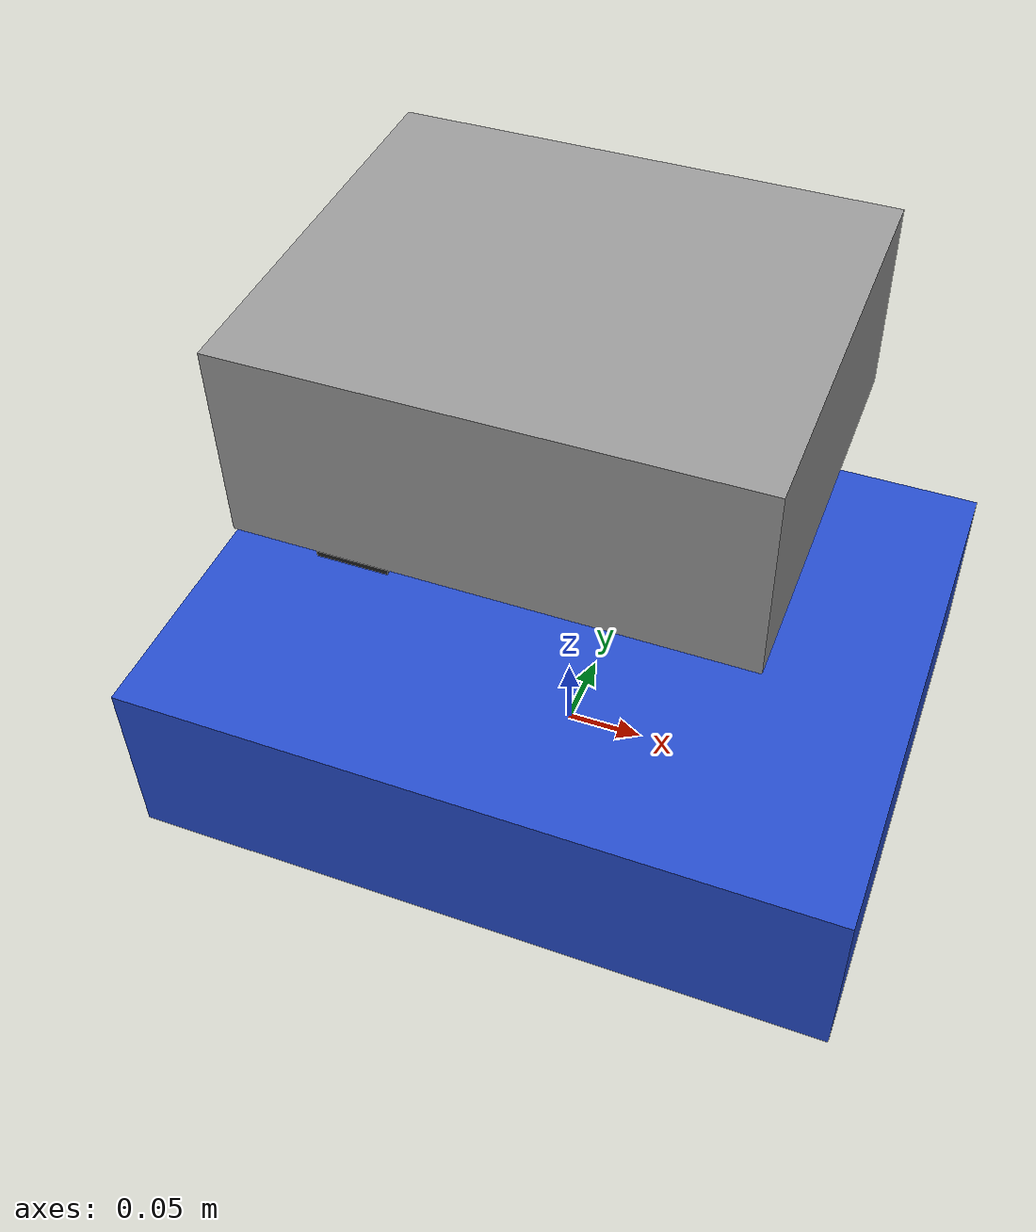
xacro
<?xml version="1.0"?>

<robot xmlns:xacro="http://www.ros.org/wiki/xacro">

    <!-- Base Chassis                  -->

    <link name="base_link">

        <visual>
            <origin xyz="0 0 0.06" rpy="0 0 0"/>
            <geometry>
                <box size="0.45 0.35 0.12"/>
            </geometry>
            <material name="blue"/>
        </visual>

        <collision>
            <origin xyz="0 0 0.07" rpy="0 0 0"/>
            <geometry>
                <box size="0.45 0.25 0.10"/>
            </geometry>
        </collision>

        <inertial>
            <origin xyz="0 0 0.06"/>
            <mass value="15"/>
            <inertia
                ixx="0.25"
                ixy="0"
                ixz="0"
                iyy="1.20"
                iyz="0"
                izz="0.50"/>
        </inertial>

    </link>

    <!-- Parcel Box                    -->

    <link name="parcel_box">

        <visual>

            <origin xyz="0 0 0.18"/>

            <geometry>
                <box size="0.30 0.25 0.12"/>
            </geometry>

            <material name="grey"/>

        </visual>

        <collision>

            <origin xyz="0 0 0.18"/>

            <geometry>
                <box size="0.30 0.25 0.12"/>
            </geometry>

        </collision>

        <inertial>

            <origin xyz="0 0 0.18"/>

            <mass value="1.5"/>

            <inertia
                ixx="0.02"
                ixy="0"
                ixz="0"
                iyy="0.02"
                iyz="0"
                izz="0.02"/>

        </inertial>

    </link>

    <joint
        name="parcel_box_joint"
        type="fixed">

        <parent link="base_link"/>

        <child link="parcel_box"/>

        <origin xyz="0 0 0.12"/>

    </joint>

    <!-- Rear Support Rod              -->

    <link name="rear_support_rod">

        <visual>
            <origin xyz="0 0 0" rpy="0 0 0"/>
            <geometry>
                <box size="0.05 0.05 0.14"/>   <!-- same dimensions as sensor_tower -->
            </geometry>
            <material name="black"/>
        </visual>

        <collision>
            <origin xyz="0 0 0" rpy="0 0 0"/>
            <geometry>
                <box size="0.05 0.05 0.14"/>
            </geometry>
        </collision>

        <inertial>
            <mass value="0.5"/>
            <origin xyz="0 0 0"/>
            <inertia
                ixx="0.001"
                ixy="0"
                ixz="0"
                iyy="0.001"
                iyz="0"
                izz="0.001"/>
        </inertial>

    </link>

    <joint name="rear_support_rod_joint" type="fixed">
        <parent link="base_link"/>
        <child link="rear_support_rod"/>
        <!-- sensor_tower is at x=+0.14, so mirror it to rear at x=-0.14 -->
        <origin xyz="-0.14 0 0.19"/>
    </joint>

    <!-- Battery Pack                  -->
    <!-- Front section, low mount      -->
    <!-- Shifts CoM forward to resist  -->
    <!-- backward tipping on accel     -->

    <link name="battery_pack">
        <visual>
            <origin xyz="0 0 0"/>
            <geometry>
                <box size="0.18 0.28 0.05"/>
            </geometry>
            <material name="black"/>
        </visual>
        <collision>
            <origin xyz="0 0 0"/>
            <geometry>
                <box size="0.18 0.28 0.05"/>
            </geometry>
        </collision>
        <inertial>
            <mass value="3.0"/>
            <origin xyz="0 0 0"/>
            <inertia
                ixx="0.010"
                ixy="0"
                ixz="0"
                iyy="0.008"
                iyz="0"
                izz="0.016"/>
        </inertial>
    </link>

    <joint name="battery_joint" type="fixed">
        <parent link="base_link"/>
        <child link="battery_pack"/>
        <!-- front section of chassis, sitting on floor -->
        <origin xyz="0.10 0 0.045"/>
    </joint>

</robot>
